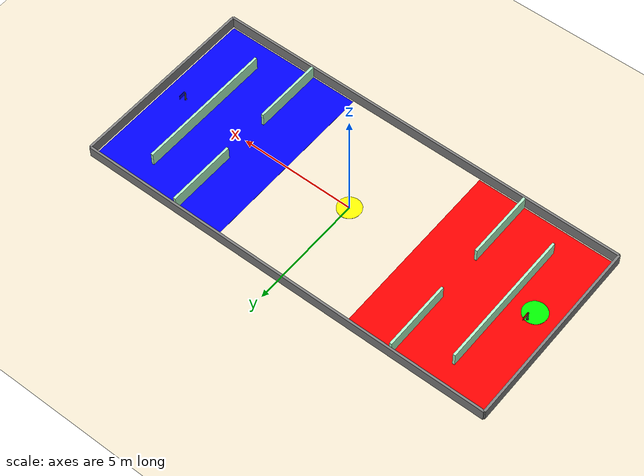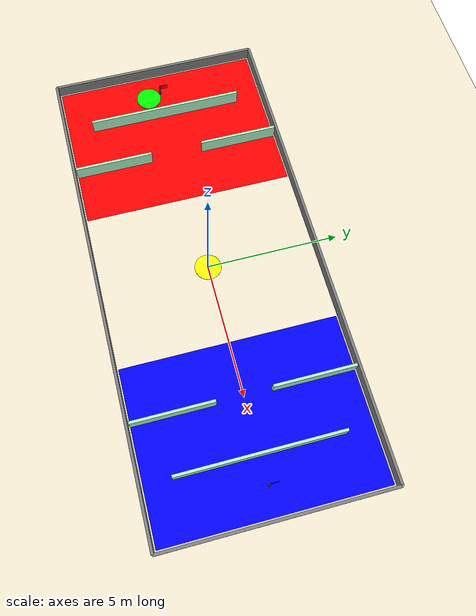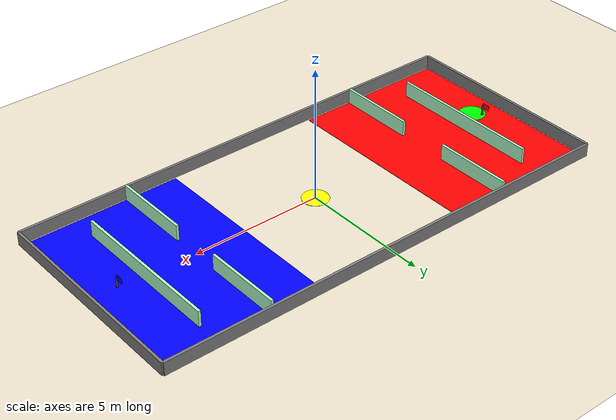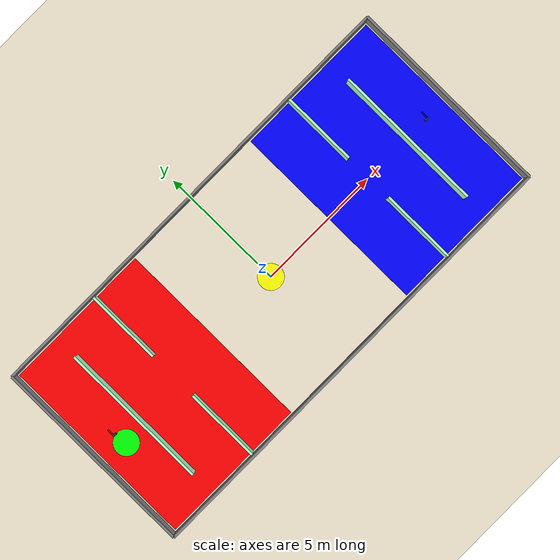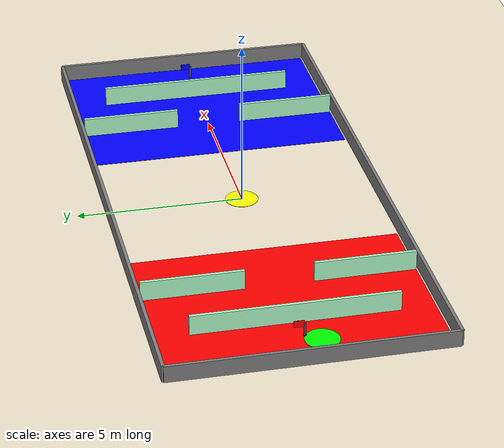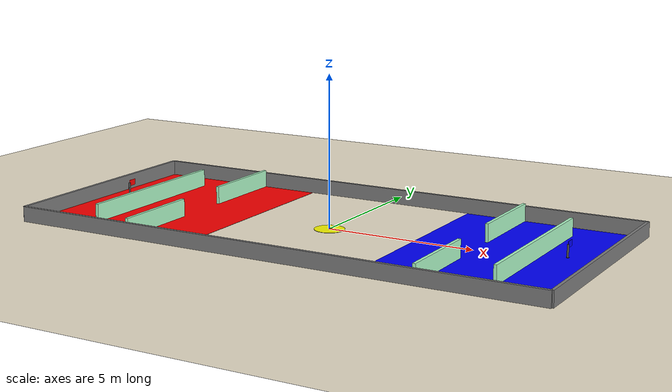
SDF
<?xml version="1.0" ?>
<!-- |    This document was autogenerated by xacro from arena_paredes.sdf.xacro        | -->
<!-- |    EDITING THIS FILE BY HAND IS NOT RECOMMENDED                                 | -->
<sdf version="1.8">
  <!-- Gerando o SDF:
        $ xacro arena_paredes.sdf.xacro > arena_paredes.sdf
     -->
  <world name="capture_the_flag_world">
    <plugin filename="ignition-gazebo-physics-system" name="ignition::gazebo::systems::Physics"/>
    <plugin filename="ignition-gazebo-user-commands-system" name="ignition::gazebo::systems::UserCommands"/>
    <plugin filename="ignition-gazebo-scene-broadcaster-system" name="ignition::gazebo::systems::SceneBroadcaster"/>
    <plugin filename="ignition-gazebo-sensors-system" name="ignition::gazebo::systems::Sensors">
      <render_engine>ogre2</render_engine>
    </plugin>
    <plugin filename="libignition-gazebo-contact-system.so" name="ignition::gazebo::systems::Contact">
        </plugin>
    <scene>
      <ambient>1.0 1.0 1.0</ambient>
      <background>0.8 0.8 0.8</background>
    </scene>
    <light name="sun" type="directional">
      <cast_shadows>true</cast_shadows>
      <pose>0 0 10 0 0 0</pose>
      <diffuse>0.8 0.8 0.8 1</diffuse>
      <specular>0.2 0.2 0.2 1</specular>
      <attenuation>
        <range>1000</range>
        <constant>0.9</constant>
        <linear>0.01</linear>
        <quadratic>0.001</quadratic>
      </attenuation>
      <direction>-0.5 0.1 -0.9</direction>
    </light>
    <model name="ground_plane">
      <static>1</static>
      <self_collide>0</self_collide>
      <enable_wind>0</enable_wind>
      <kinematic>0</kinematic>
      <plugin filename="ignition-gazebo-label-system" name="ignition::gazebo::systems::Label">
        <label>5</label>
      </plugin>
      <link name="ground_plane_link">
        <collision name="ground_plane_collision">
          <geometry>
            <plane>
              <normal>0 0 1</normal>
              <size>100.0 100.0</size>
            </plane>
          </geometry>
        </collision>
        <visual name="ground_plane_visual">
          <cast_shadows>0</cast_shadows>
          <geometry>
            <plane>
              <normal>0 0 1</normal>
              <size>100.0 100.0</size>
            </plane>
          </geometry>
          <material>
            <ambient>0.94 0.90 0.81 1</ambient>
            <diffuse>0.94 0.90 0.81 1</diffuse>
            <specular>1 1 1 0</specular>
          </material>
        </visual>
      </link>
    </model>
    <model name="red_base">
      <pose>-6.0 0 0 0 0 0</pose>
      <self_collide>0</self_collide>
      <enable_wind>0</enable_wind>
      <kinematic>0</kinematic>
      <static>1</static>
      <plugin filename="ignition-gazebo-label-system" name="ignition::gazebo::systems::Label">
        <label>10</label>
      </plugin>
      <link name="red_base_link">
        <collision name="red_base_collision">
          <geometry>
            <box>
              <size>6 8 0.01</size>
            </box>
          </geometry>
        </collision>
        <visual name="red_base_visual">
          <geometry>
            <box>
              <size>6 8 0.01</size>
            </box>
          </geometry>
          <material>
            <ambient>1 0 0 1</ambient>
            <diffuse>1 0 0 1</diffuse>
          </material>
        </visual>
      </link>
    </model>
    <model name="blue_base">
      <pose>6.0 0 0 0 0 0</pose>
      <static>1</static>
      <self_collide>0</self_collide>
      <enable_wind>0</enable_wind>
      <kinematic>0</kinematic>
      <plugin filename="ignition-gazebo-label-system" name="ignition::gazebo::systems::Label">
        <label>15</label>
      </plugin>
      <link name="blue_base_link">
        <collision name="blue_base_collision">
          <geometry>
            <box>
              <size>6 8 0.01</size>
            </box>
          </geometry>
        </collision>
        <visual name="blue_base_visual">
          <geometry>
            <box>
              <size>6 8 0.01</size>
            </box>
          </geometry>
          <material>
            <ambient>0 0 1 1</ambient>
            <diffuse>0 0 1 1</diffuse>
          </material>
        </visual>
      </link>
    </model>
    <model name="red_flag">
      <static>false</static>
      <plugin filename="ignition-gazebo-label-system" name="ignition::gazebo::systems::Label">
        <label>20</label>
      </plugin>
      <link name="red_flag_link">
        <pose>-8.0 0 0.2 0 0 1.5708</pose>
        <!-- Mastro -->
        <visual name="pole_visual">
          <pose>0 0 0.2 0 0 0</pose>
          <geometry>
            <cylinder>
              <radius>0.03</radius>
              <length>0.4</length>
            </cylinder>
          </geometry>
          <material>
            <ambient>0.2 0.2 0.2 1</ambient>
            <diffuse>0.3 0.3 0.3 1</diffuse>
          </material>
        </visual>
        <!-- Painel da bandeira -->
        <visual name="red_flag_panel_visual">
          <pose>0.16 0 0.38 0 0 0</pose>
          <geometry>
            <box>
              <size>0.3 0.01 0.2</size>
            </box>
          </geometry>
          <material>
            <ambient>1 0 0 1</ambient>
            <diffuse>1 0 0 1</diffuse>
          </material>
        </visual>
        <!-- Colisão -->
        <collision name="red_flag_collision">
          <pose>0 0 0.2 0 0 0</pose>
          <geometry>
            <box>
              <size>0.06 0.06 0.4 </size>
            </box>
          </geometry>
        </collision>
        <!-- Base da bandeira (visual) -->
        <visual name="base_visual">
          <pose>0 0 0.005 0 0 0</pose>
          <geometry>
            <cylinder>
              <radius>0.05</radius>
              <length>0.01</length>
            </cylinder>
          </geometry>
          <material>
            <ambient>0.1 0.1 0.1 1</ambient>
            <diffuse>0.2 0.2 0.2 1</diffuse>
          </material>
        </visual>
        <!-- Base da bandeira (colisão) -->
        <collision name="base_collision">
          <pose>0 0 0.005 0 0 0</pose>
          <geometry>
            <box>
              <size>0.1 0.1 0.01 </size>
            </box>
          </geometry>
        </collision>
        <collision name="top_base_collision">
          <pose>0 0 0.30000000000000004 0 0 0</pose>
          <geometry>
            <box>
              <size>0.1 0.1 0.01 </size>
            </box>
          </geometry>
        </collision>
        <!-- Inércia -->
        <inertial>
          <mass>0.1</mass>
          <inertia>
            <ixx>0.001</ixx>
            <iyy>0.001</iyy>
            <izz>0.001</izz>
          </inertia>
        </inertial>
      </link>
    </model>
    <model name="blue_flag">
      <static>false</static>
      <plugin filename="ignition-gazebo-label-system" name="ignition::gazebo::systems::Label">
        <label>25</label>
      </plugin>
      <link name="blue_flag_link">
        <pose>8.0 0 0.2 0 0 1.5708</pose>
        <!-- Mastro -->
        <visual name="pole_visual">
          <pose>0 0 0.2 0 0 0</pose>
          <geometry>
            <cylinder>
              <radius>0.03</radius>
              <length>0.4</length>
            </cylinder>
          </geometry>
          <material>
            <ambient>0.2 0.2 0.2 1</ambient>
            <diffuse>0.3 0.3 0.3 1</diffuse>
          </material>
        </visual>
        <!-- Painel da bandeira -->
        <visual name="blue_flag_panel_visual">
          <pose>0.16 0 0.38 0 0 0</pose>
          <geometry>
            <box>
              <size>0.3 0.01 0.2</size>
            </box>
          </geometry>
          <material>
            <ambient>0 0 1 1</ambient>
            <diffuse>0 0 1 1</diffuse>
          </material>
        </visual>
        <!-- Colisão -->
        <collision name="blue_flag_collision">
          <pose>0 0 0.2 0 0 0</pose>
          <geometry>
            <box>
              <size>0.06 0.06 0.4 </size>
            </box>
          </geometry>
        </collision>
        <!-- Base da bandeira (visual) -->
        <visual name="base_visual">
          <pose>0 0 0.005 0 0 0</pose>
          <geometry>
            <cylinder>
              <radius>0.05</radius>
              <length>0.01</length>
            </cylinder>
          </geometry>
          <material>
            <ambient>0.1 0.1 0.1 1</ambient>
            <diffuse>0.2 0.2 0.2 1</diffuse>
          </material>
        </visual>
        <!-- Base da bandeira (colisão) -->
        <collision name="base_collision">
          <pose>0 0 0.005 0 0 0</pose>
          <geometry>
            <box>
              <size>0.1 0.1 0.01 </size>
            </box>
          </geometry>
        </collision>
        <collision name="top_base_collision">
          <pose>0 0 0.30000000000000004 0 0 0</pose>
          <geometry>
            <box>
              <size>0.1 0.1 0.01 </size>
            </box>
          </geometry>
        </collision>
        <!-- Inércia -->
        <inertial>
          <mass>0.1</mass>
          <inertia>
            <ixx>0.001</ixx>
            <iyy>0.001</iyy>
            <izz>0.001</izz>
          </inertia>
        </inertial>
      </link>
    </model>
    <model name="center_zone">
      <pose>0 0 0 0 0 0</pose>
      <static>1</static>
      <self_collide>0</self_collide>
      <enable_wind>0</enable_wind>
      <kinematic>0</kinematic>
      <plugin filename="ignition-gazebo-label-system" name="ignition::gazebo::systems::Label">
        <label>30</label>
      </plugin>
      <link name="center_zone_link">
        <collision name="center_zone_collision">
          <geometry>
            <cylinder>
              <radius>0.5</radius>
              <length>0.01</length>
            </cylinder>
          </geometry>
          <max_contacts>10</max_contacts>
        </collision>
        <visual name="center_zone_visual">
          <geometry>
            <cylinder>
              <radius>0.5</radius>
              <length>0.01</length>
            </cylinder>
          </geometry>
          <material>
            <ambient>1 1 0 1</ambient>
            <diffuse>1 1 0 1</diffuse>
          </material>
        </visual>
      </link>
    </model>
    <model name="flag_deploy_zone">
      <pose>-8 -0.5 0.01 0 0 0</pose>
      <static>1</static>
      <self_collide>0</self_collide>
      <enable_wind>0</enable_wind>
      <kinematic>0</kinematic>
      <plugin filename="ignition-gazebo-label-system" name="ignition::gazebo::systems::Label">
        <label>28</label>
      </plugin>
      <link name="flag_deploy_zone_link">
        <collision name="flag_deploy_zone_collision">
          <geometry>
            <cylinder>
              <radius>0.5</radius>
              <length>0.01</length>
            </cylinder>
          </geometry>
          <max_contacts>10</max_contacts>
        </collision>
        <visual name="flag_deploy_zone_visual">
          <geometry>
            <cylinder>
              <radius>0.5</radius>
              <length>0.01</length>
            </cylinder>
          </geometry>
          <material>
            <ambient>0 1 0 1</ambient>
            <diffuse>0 1 0 1</diffuse>
          </material>
        </visual>
      </link>
    </model>
    <model name="paredes_arena">
      <pose>0 0 0 0 0 0</pose>
      <plugin filename="ignition-gazebo-label-system" name="ignition::gazebo::systems::Label">
        <label>35</label>
      </plugin>
      <!-- Parede inferior -->
      <link name="parede_lateral_inferior">
        <pose>0 -4.1 0 0 0 0</pose>
        <collision name="col">
          <pose>0 0 0.25 0 0 0</pose>
          <geometry>
            <box>
              <size>18.2 0.1 0.5</size>
            </box>
          </geometry>
        </collision>
        <visual name="vis">
          <pose>0 0 0.25 0 0 0</pose>
          <geometry>
            <box>
              <size>18.2 0.1 0.5</size>
            </box>
          </geometry>
          <material>
            <ambient>0.5 0.5 0.5 1</ambient>
            <diffuse>0.5 0.5 0.5 1</diffuse>
            <specular>0.1 0.1 0.1 1</specular>
          </material>
        </visual>
      </link>
      <!-- Parede superior -->
      <link name="parede_lateral_superior">
        <pose>0 4.1 0 0 0 3.14159</pose>
        <collision name="col">
          <pose>0 0 0.25 0 0 0</pose>
          <geometry>
            <box>
              <size>18.2 0.1 0.5</size>
            </box>
          </geometry>
        </collision>
        <visual name="vis">
          <pose>0 0 0.25 0 0 0</pose>
          <geometry>
            <box>
              <size>18.2 0.1 0.5</size>
            </box>
          </geometry>
          <material>
            <ambient>0.5 0.5 0.5 1</ambient>
            <diffuse>0.5 0.5 0.5 1</diffuse>
            <specular>0.1 0.1 0.1 1</specular>
          </material>
        </visual>
      </link>
      <!-- Parede direita -->
      <link name="parede_fundo_blue">
        <pose>9.1 0 0 0 0 1.5708</pose>
        <collision name="col">
          <pose>0 0 0.25 0 0 0</pose>
          <geometry>
            <box>
              <size>8.2 0.1 0.5</size>
            </box>
          </geometry>
        </collision>
        <visual name="vis">
          <pose>0 0 0.25 0 0 0</pose>
          <geometry>
            <box>
              <size>8.2 0.1 0.5</size>
            </box>
          </geometry>
          <material>
            <ambient>0.5 0.5 0.5 1</ambient>
            <diffuse>0.5 0.5 0.5 1</diffuse>
            <specular>0.1 0.1 0.1 1</specular>
          </material>
        </visual>
      </link>
      <!-- Parede esquerda -->
      <link name="parede_fund_red">
        <pose>-9.1 0 0 0 0 -1.5708</pose>
        <collision name="col">
          <pose>0 0 0.25 0 0 0</pose>
          <geometry>
            <box>
              <size>8.2 0.1 0.5</size>
            </box>
          </geometry>
        </collision>
        <visual name="vis">
          <pose>0 0 0.25 0 0 0</pose>
          <geometry>
            <box>
              <size>8.2 0.1 0.5</size>
            </box>
          </geometry>
          <material>
            <ambient>0.5 0.5 0.5 1</ambient>
            <diffuse>0.5 0.5 0.5 1</diffuse>
            <specular>0.1 0.1 0.1 1</specular>
          </material>
        </visual>
      </link>
    </model>
    <include>
      <uri>Paredes</uri>
      <name>obstaculos_vermelho</name>
      <pose>-6 0 0.0 0 0 0</pose>
      <!-- Defefinindo label de obstaculos como 30 -->
      <plugin filename="ignition-gazebo-label-system" name="ignition::gazebo::systems::Label">
        <label>30</label>
      </plugin>
    </include>
    <include>
      <uri>Paredes</uri>
      <name>obstaculos_azul</name>
      <pose>6 0 0 0 0 3.141592654</pose>
      <!-- Defefinindo label de obstaculos como 30 -->
      <plugin filename="ignition-gazebo-label-system" name="ignition::gazebo::systems::Label">
        <label>30</label>
      </plugin>
    </include>
  </world>
</sdf>

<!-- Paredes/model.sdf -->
<!-- |    This document was autogenerated by xacro from paredes.xacro.sdf              | -->
<!-- |    EDITING THIS FILE BY HAND IS NOT RECOMMENDED                                 | -->
<!-- arquivo: objetos_cilindricos.xacro -->
<!-- Gerar com:
     $ xacro paredes.xacro.sdf > model.sdf
-->
<sdf version="1.8">
  <model name="obstaculos_cilindricos">
    <static>true</static>
    <link name="parede_fundo">
      <visual name="parede_fundo_visual">
        <pose>-1.0 0.0 0.3 0 0 1.5707963267948966</pose>
        <geometry>
          <box>
            <size>6.0 0.1 0.6</size>
          </box>
        </geometry>
        <material>
          <ambient>0.7 1.0 0.8 1</ambient>
          <diffuse>0.7 1.0 0.8 1</diffuse>
          <specular>0.3 0.4 0.3 1</specular>
        </material>
      </visual>
      <collision name="parede_fundo_collision">
        <pose>-1.0 0.0 0.3 0 0 1.5707963267948966</pose>
        <geometry>
          <box>
            <size>6.0 0.1 0.6</size>
          </box>
        </geometry>
      </collision>
    </link>
    <link name="parede_esquerda">
      <visual name="parede_esquerda_visual">
        <pose>1.0 -2.5 0.3 0 0 1.5707963267948966</pose>
        <geometry>
          <box>
            <size>3.0 0.1 0.6</size>
          </box>
        </geometry>
        <material>
          <ambient>0.7 1.0 0.8 1</ambient>
          <diffuse>0.7 1.0 0.8 1</diffuse>
          <specular>0.3 0.4 0.3 1</specular>
        </material>
      </visual>
      <collision name="parede_esquerda_collision">
        <pose>1.0 -2.5 0.3 0 0 1.5707963267948966</pose>
        <geometry>
          <box>
            <size>3.0 0.1 0.6</size>
          </box>
        </geometry>
      </collision>
    </link>
    <link name="parede_direita">
      <visual name="parede_direita_visual">
        <pose>1.0 2.5 0.3 0 0 -1.5707963267948966</pose>
        <geometry>
          <box>
            <size>3.0 0.1 0.6</size>
          </box>
        </geometry>
        <material>
          <ambient>0.7 1.0 0.8 1</ambient>
          <diffuse>0.7 1.0 0.8 1</diffuse>
          <specular>0.3 0.4 0.3 1</specular>
        </material>
      </visual>
      <collision name="parede_direita_collision">
        <pose>1.0 2.5 0.3 0 0 -1.5707963267948966</pose>
        <geometry>
          <box>
            <size>3.0 0.1 0.6</size>
          </box>
        </geometry>
      </collision>
    </link>
  </model>
</sdf>
